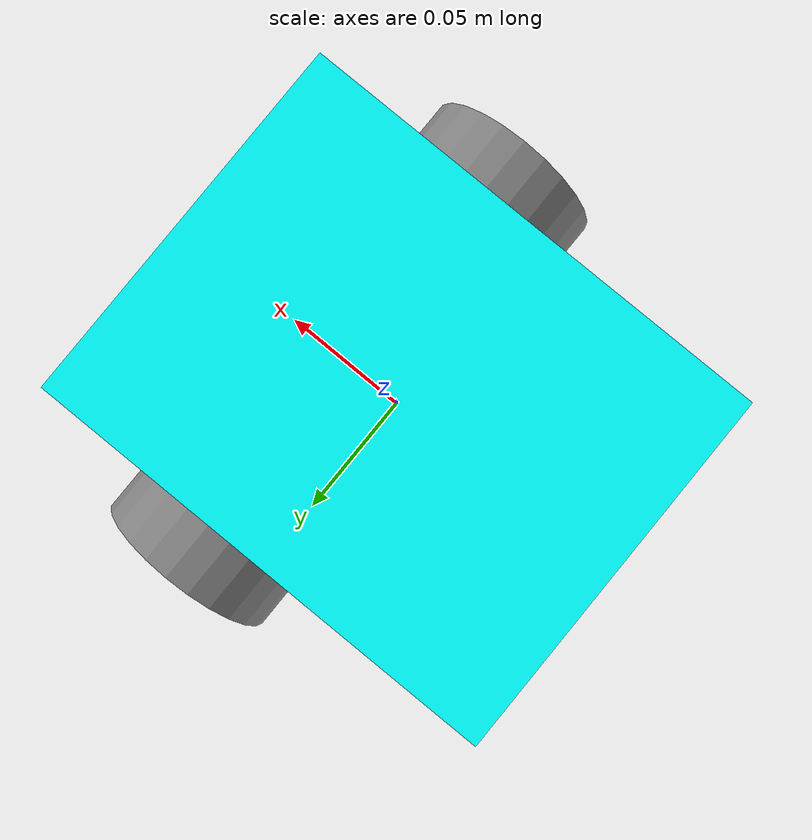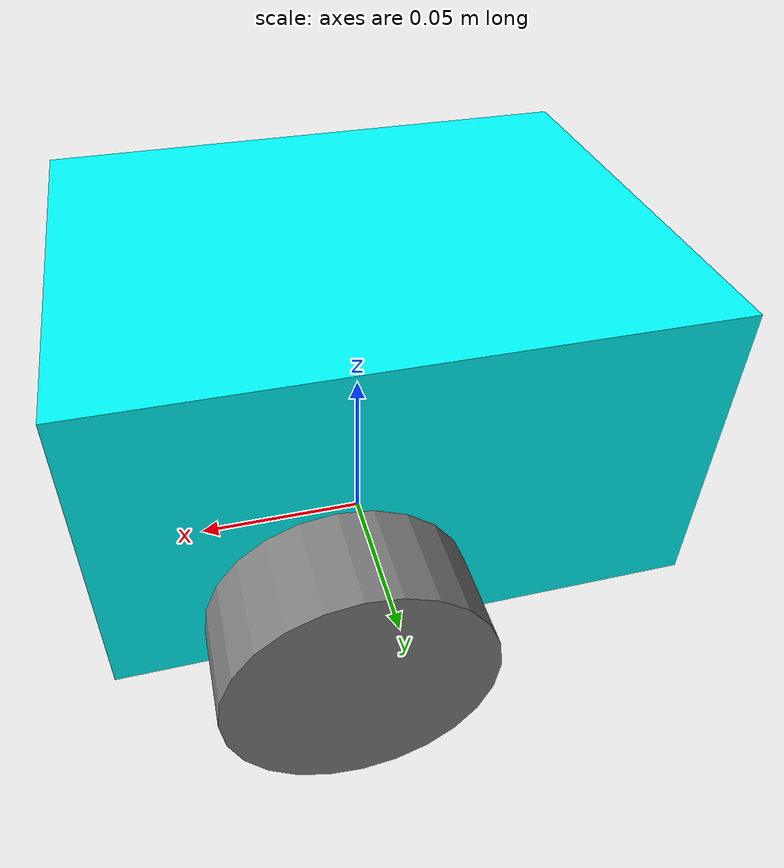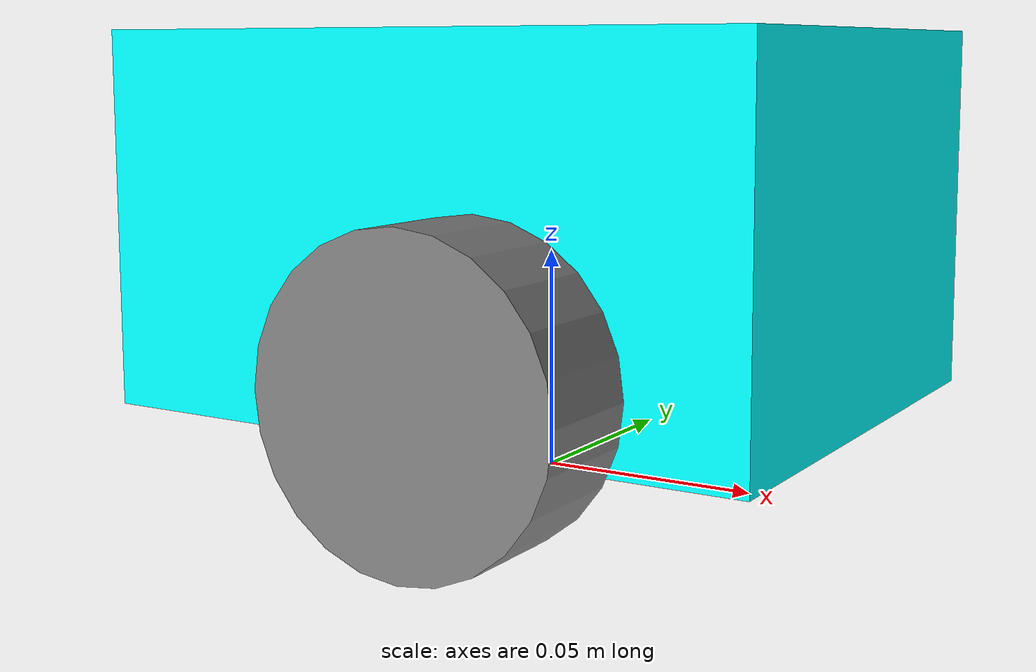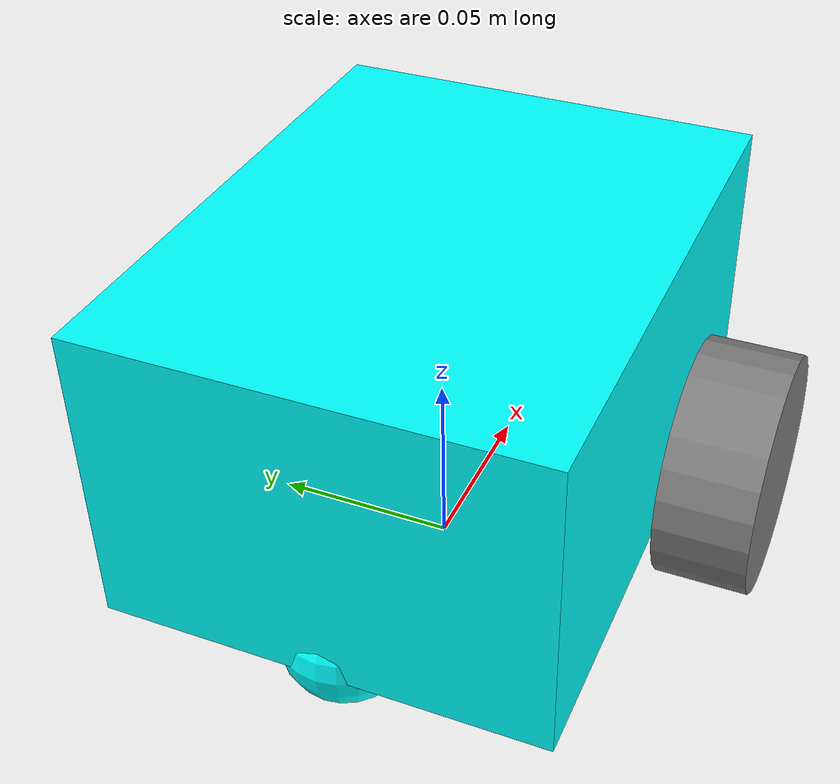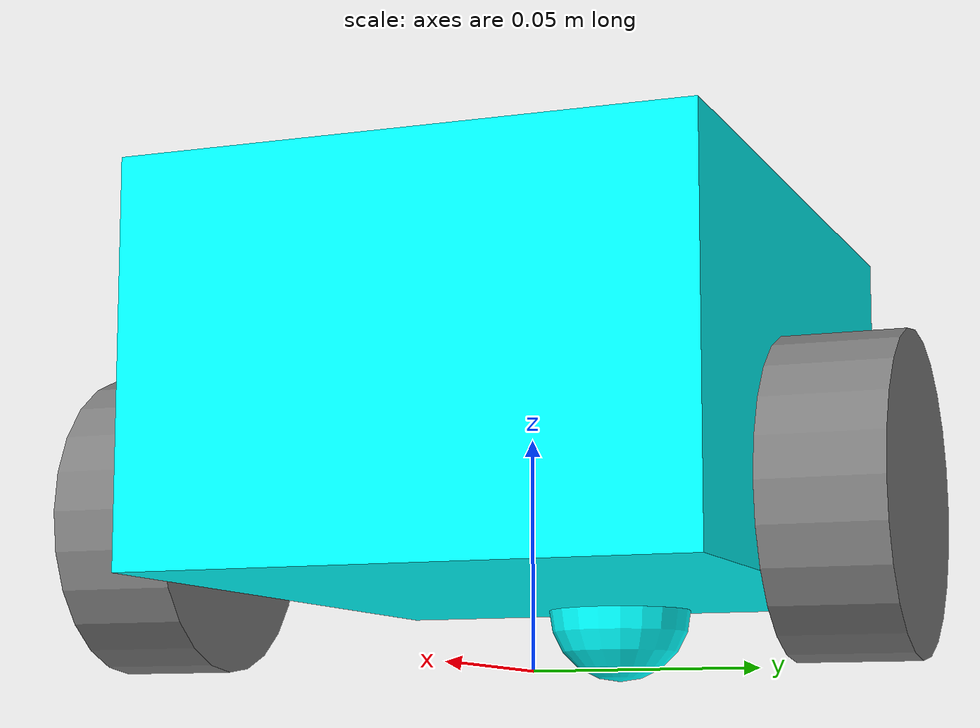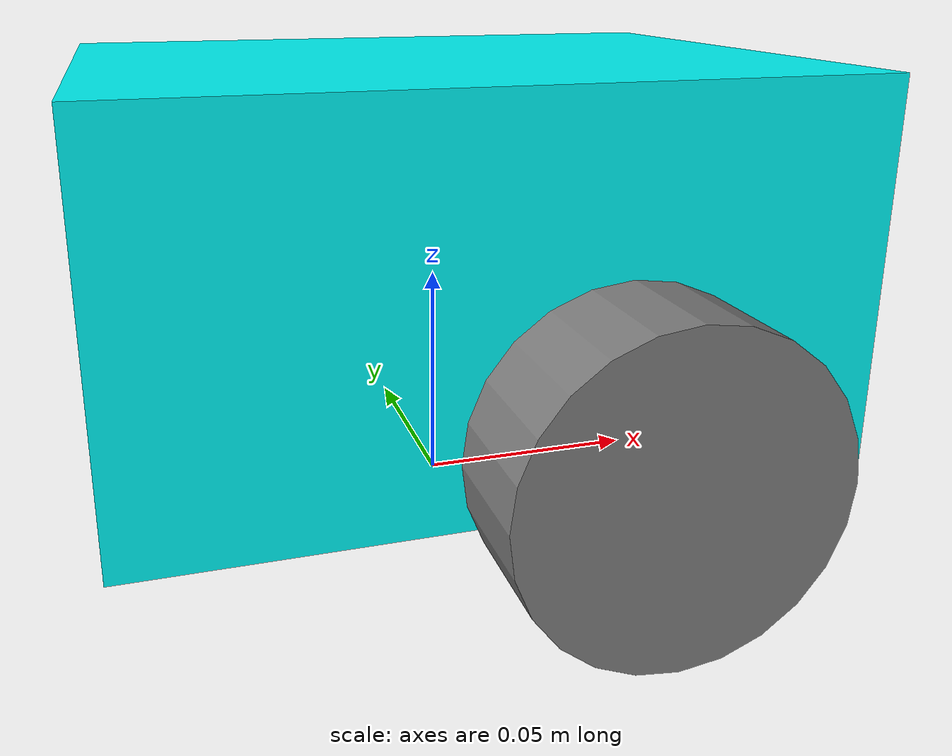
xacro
<?xml version="1.0"?>
<!-- Basic differential drive mobile base -->
<robot xmlns:xacro="http://www.ros.org/wiki/xacro" name="diffdrive_robot">
  <xacro:arg name="prefix" default="" />

  <xacro:include filename="$(find diffdrive_penguinpi)/urdf/diffbot_description.urdf.xacro" />

  <!-- Import Rviz colors -->
  <xacro:include filename="$(find diffdrive_penguinpi)/urdf/diffbot.materials.xacro" />

  <!-- Import diffbot ros2_control description -->
  <xacro:include filename="$(find diffdrive_penguinpi)/ros2_control/diffbot.ros2_control.xacro" />

  <xacro:diffbot prefix="$(arg prefix)" />

  <xacro:diffbot_ros2_control
    name="DiffBot" prefix="$(arg prefix)" />

</robot>

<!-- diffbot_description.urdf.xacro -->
<robot xmlns:xacro="http://www.ros.org/wiki/xacro">

  <xacro:macro name="diffbot" params="prefix">

    <!-- Define robot constants -->
    <xacro:property name="base_width" value="0.119"/>
    <xacro:property name="base_length" value="0.152"/>
    <xacro:property name="base_height" value="0.083"/>

    <xacro:property name="wheel_radius" value="0.0325"/>
    <xacro:property name="wheel_width" value="0.025"/>
    <xacro:property name="wheel_ygap" value="0.0155"/>
    <xacro:property name="wheel_zoff" value="0.026"/>
    <xacro:property name="wheel_xoff" value="0.02"/>

    <xacro:property name="caster_xoff" value="0.061"/>

    <!-- Define intertial property macros  -->
    <xacro:macro name="box_inertia" params="m w h d">
      <inertial>
        <origin xyz="0 0 0" rpy="${pi/2} 0 ${pi/2}"/>
        <mass value="${m}"/>
        <inertia ixx="${(m/12) * (h*h + d*d)}" ixy="0.0" ixz="0.0" iyy="${(m/12) * (w*w + d*d)}" iyz="0.0" izz="${(m/12) * (w*w + h*h)}"/>
      </inertial>
    </xacro:macro>

    <xacro:macro name="cylinder_inertia" params="m r h">
      <inertial>
        <origin xyz="0 0 0" rpy="${pi/2} 0 0" />
        <mass value="${m}"/>
        <inertia ixx="${(m/12) * (3*r*r + h*h)}" ixy = "0" ixz = "0" iyy="${(m/12) * (3*r*r + h*h)}" iyz = "0" izz="${(m/2) * (r*r)}"/>
      </inertial>
    </xacro:macro>

    <xacro:macro name="sphere_inertia" params="m r">
      <inertial>
        <mass value="${m}"/>
        <inertia ixx="${(2/5) * m * (r*r)}" ixy="0.0" ixz="0.0" iyy="${(2/5) * m * (r*r)}" iyz="0.0" izz="${(2/5) * m * (r*r)}"/>
      </inertial>
    </xacro:macro>

    <!-- Robot Base -->
    <link name="${prefix}base_link">
      <visual>
        <origin xyz="0 0 ${(wheel_zoff+wheel_radius)}" rpy="0 0 0"/>
        <geometry>
          <box size="${base_length} ${base_width} ${base_height}"/>
        </geometry>
        <material name="Cyan">
          <color rgba="0 1.0 1.0 1.0"/>
        </material>
      </visual>

      <collision>
        <geometry>
          <box size="${base_length} ${base_width} ${base_height}"/>
        </geometry>
      </collision>

      <xacro:box_inertia m="15" w="${base_width}" d="${base_length}" h="${base_height}"/>
    </link>

    <!-- Robot Footprint -->
    <link name="base_footprint"/>

    <joint name="base_joint" type="fixed">
      <parent link="${prefix}base_link"/>
      <child link="base_footprint"/>
      <origin xyz="0.0 0.0 ${(wheel_zoff+wheel_radius)}" rpy="0 0 0"/>
    </joint>

    <!-- Wheels -->
    <xacro:macro name="wheel" params="wheel_name x_reflect y_reflect">
      <link name="${wheel_name}">
        <visual>
          <origin xyz="0 0 0" rpy="${pi/2} 0 0"/>
          <geometry>
              <cylinder radius="${wheel_radius}" length="${wheel_width}"/>
          </geometry>
          <material name="Gray">
            <color rgba="0.5 0.5 0.5 1.0"/>
          </material>
        </visual>

        <collision>
          <origin xyz="0 0 0" rpy="${pi/2} 0 0"/>
          <geometry>
            <cylinder radius="${wheel_radius}" length="${wheel_width}"/>
          </geometry>
        </collision>

        <xacro:cylinder_inertia m="0.5" r="${wheel_radius}" h="${wheel_width}"/>
      </link>

      <joint name="${wheel_name}_joint" type="continuous">
        <parent link="${prefix}base_footprint"/>
        <child link="${wheel_name}"/>
        <origin xyz="${x_reflect*wheel_xoff} ${y_reflect*(base_width/2+wheel_ygap)} ${-wheel_zoff}" rpy="0 0 0"/>
        <axis xyz="0 1 0"/>
      </joint>
    </xacro:macro>

    <xacro:wheel wheel_name="${prefix}left_wheel" x_reflect="1" y_reflect="1" />
    <xacro:wheel wheel_name="${prefix}right_wheel" x_reflect="1" y_reflect="-1" />

    <!-- Caster Wheel -->
    <link name="${prefix}caster_rear_wheel">
      <visual>
        <geometry>
          <sphere radius="${((wheel_radius)+wheel_zoff-(base_height/2))}"/>
        </geometry>
        <material name="Cyan">
          <color rgba="0 1.0 1.0 1.0"/>
        </material>
      </visual>

      <collision>
        <origin xyz="0 0 0" rpy="0 0 0"/>
        <geometry>
          <sphere radius="${((wheel_radius)+wheel_zoff-(base_height/2))}"/>
        </geometry>
      </collision>

      <xacro:sphere_inertia m="0.5" r="${(wheel_radius+wheel_zoff-(base_height/2))}"/>
    </link>

    <joint name="${prefix}caster_rear_wheel_joint" type="fixed">
      <parent link="${prefix}base_footprint"/>
      <child link="${prefix}caster_rear_wheel"/>
      <origin xyz="${-caster_xoff} 0.0 ${-(base_height/2)}" rpy="0 0 0"/>
    </joint>

  </xacro:macro>

</robot>
